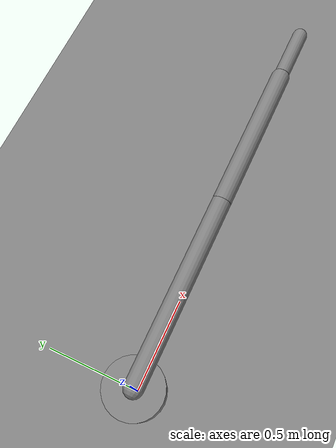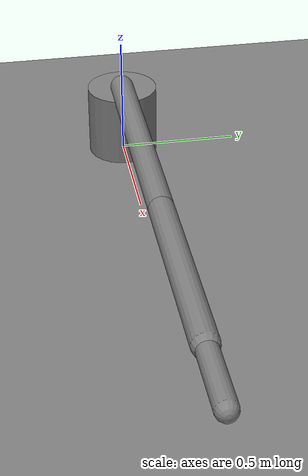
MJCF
<mujoco model="three_link_arm">

    <option
        timestep="0.002"
        gravity="0 0 -9.81"
    />

    <worldbody>

        <geom
            name="ground"
            type="plane"
            size="5 5 0.1"
        />

        <body
            name="base"
            pos="0 0 0.15"
        >

            <geom
                name="base_geom"
                type="cylinder"
                size="0.15 0.15"
            />

            <!-- link1 -->
            <body
                name="link1"
                pos="0 0 0.15"
            >

                <joint
                    name="joint1"
                    type="hinge"
                    axis="0 0 1"
                    damping="0.2"
                />

                <geom
                    name="link1_geom"
                    type="capsule"
                    fromto="0 0 0 1.0 0 0"
                    size="0.05"
                />

                <!-- link2 -->
                <body
                    name="link2"
                    pos="1.0 0 0"
                >

                    <joint
                        name="joint2"
                        type="hinge"
                        axis="0 0 1"
                        damping="0.2"
                    />

                    <geom
                        name="link2_geom"
                        type="capsule"
                        fromto="0 0 0 0.8 0 0"
                        size="0.05"
                    />

                    <!-- link3 -->
                    <body
                        name="link3"
                        pos="0.8 0 0"
                    >

                        <joint
                            name="joint3"
                            type="hinge"
                            axis="0 0 1"
                            damping="0.2"
                        />

                        <geom
                            name="link3_geom"
                            type="capsule"
                            fromto="0 0 0 0.3 0 0"
                            size="0.04"
                        />

                        <site
                            name="ee_site"
                            pos="0.3 0 0"
                            type="sphere"
                            size="0.03"
                        />

                    </body>

                </body>

            </body>

        </body>

    </worldbody>

    <contact>

        <exclude
            body1="base"
            body2="link1"
        />

        <exclude
            body1="link1"
            body2="link2"
        />

        <exclude
            body1="link2"
            body2="link3"
        />

    </contact>

    <actuator>

        <motor
            name="motor1"
            joint="joint1"
            gear="1"
            ctrllimited="true"
            ctrlrange="-20 20"
        />

        <motor
            name="motor2"
            joint="joint2"
            gear="1"
            ctrllimited="true"
            ctrlrange="-20 20"
        />

        <motor
            name="motor3"
            joint="joint3"
            gear="1"
            ctrllimited="true"
            ctrlrange="-10 10"
        />

    </actuator>

</mujoco>
